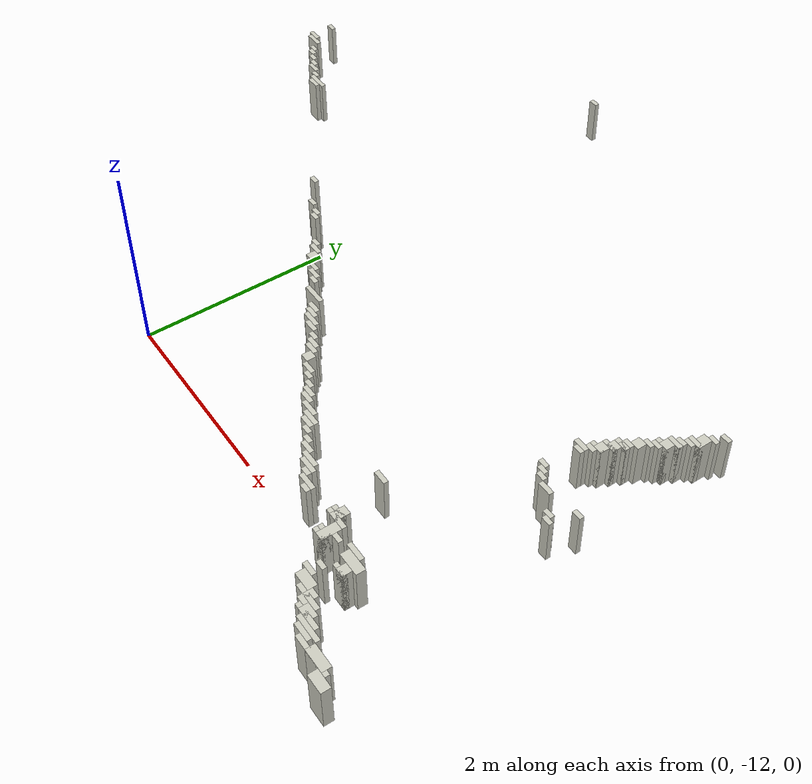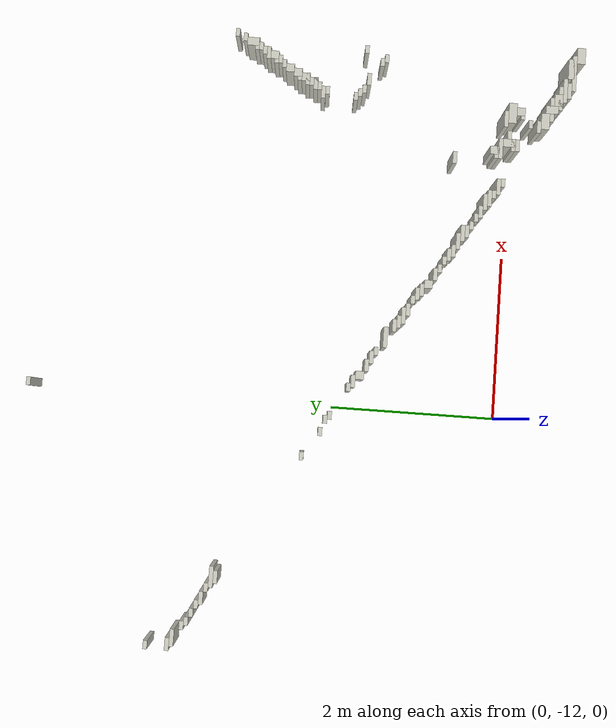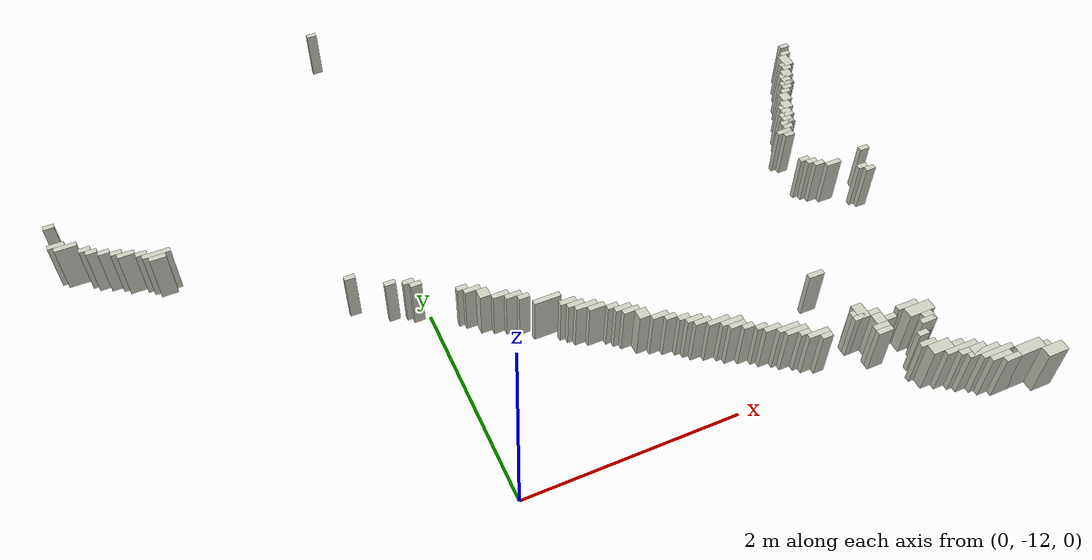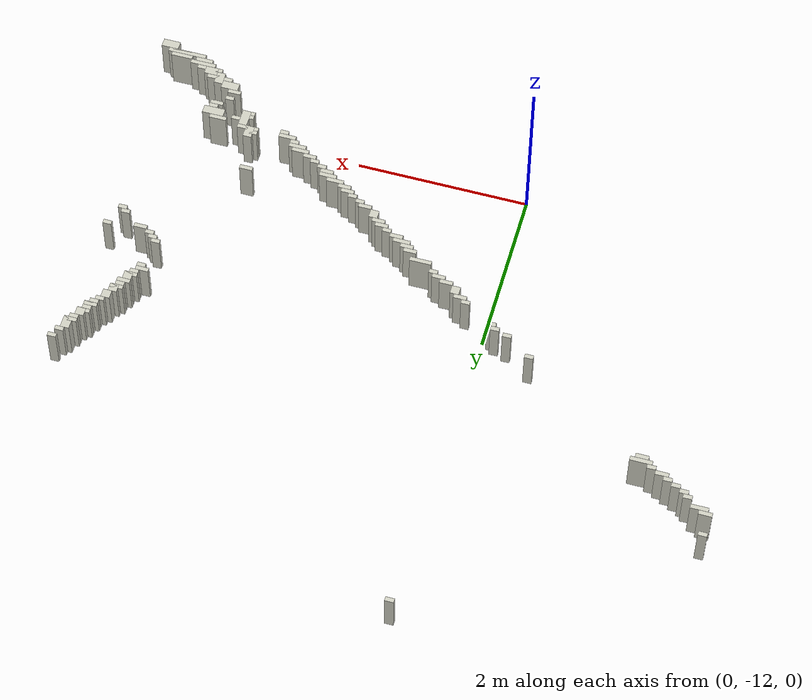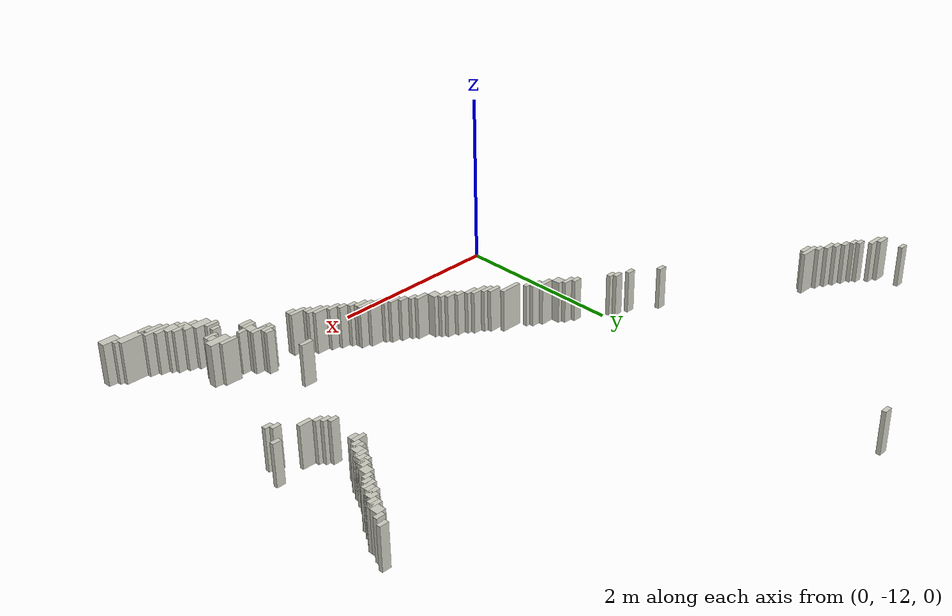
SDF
<sdf version="1.7">
 <world name="my_map_world">
  <model name="wall_426">
   <static>1</static>
   <pose>0.05 -6.375 0.25 0 -0 0</pose>
   <link name="link">
    <collision name="collision"><geometry><box><size>0.1 0.05 0.5</size></box></geometry></collision>
    <visual name="visual">
     <geometry><box><size>0.1 0.05 0.5</size></box></geometry>
     <material>
      <script><uri>file://media/materials/scripts/gazebo.material</uri><name>Gazebo/PaintedWall</name></script>
     </material>
    </visual>
   </link>
  </model>
  <model name="wall_484">
   <static>1</static>
   <pose>-2.9 -8.025 0.25 0 -0 0</pose>
   <link name="link">
    <collision name="collision"><geometry><box><size>0.1 0.05 0.5</size></box></geometry></collision>
    <visual name="visual">
     <geometry><box><size>0.1 0.05 0.5</size></box></geometry>
     <material>
      <script><uri>file://media/materials/scripts/gazebo.material</uri><name>Gazebo/PaintedWall</name></script>
     </material>
    </visual>
   </link>
  </model>
  <model name="wall_491">
   <static>1</static>
   <pose>-2.875 -8.275 0.25 0 -0 0</pose>
   <link name="link">
    <collision name="collision"><geometry><box><size>0.15 0.05 0.5</size></box></geometry></collision>
    <visual name="visual">
     <geometry><box><size>0.15 0.05 0.5</size></box></geometry>
     <material>
      <script><uri>file://media/materials/scripts/gazebo.material</uri><name>Gazebo/PaintedWall</name></script>
     </material>
    </visual>
   </link>
  </model>
  <model name="wall_493">
   <static>1</static>
   <pose>-2.8 -8.325 0.25 0 -0 0</pose>
   <link name="link">
    <collision name="collision"><geometry><box><size>0.2 0.05 0.5</size></box></geometry></collision>
    <visual name="visual">
     <geometry><box><size>0.2 0.05 0.5</size></box></geometry>
     <material>
      <script><uri>file://media/materials/scripts/gazebo.material</uri><name>Gazebo/PaintedWall</name></script>
     </material>
    </visual>
   </link>
  </model>
  <model name="wall_498">
   <static>1</static>
   <pose>-2.65 -8.425 0.25 0 -0 0</pose>
   <link name="link">
    <collision name="collision"><geometry><box><size>0.1 0.05 0.5</size></box></geometry></collision>
    <visual name="visual">
     <geometry><box><size>0.1 0.05 0.5</size></box></geometry>
     <material>
      <script><uri>file://media/materials/scripts/gazebo.material</uri><name>Gazebo/PaintedWall</name></script>
     </material>
    </visual>
   </link>
  </model>
  <model name="wall_502">
   <static>1</static>
   <pose>-2.6 -8.475 0.25 0 -0 0</pose>
   <link name="link">
    <collision name="collision"><geometry><box><size>0.1 0.05 0.5</size></box></geometry></collision>
    <visual name="visual">
     <geometry><box><size>0.1 0.05 0.5</size></box></geometry>
     <material>
      <script><uri>file://media/materials/scripts/gazebo.material</uri><name>Gazebo/PaintedWall</name></script>
     </material>
    </visual>
   </link>
  </model>
  <model name="wall_507">
   <static>1</static>
   <pose>-2.5 -8.525 0.25 0 -0 0</pose>
   <link name="link">
    <collision name="collision"><geometry><box><size>0.1 0.05 0.5</size></box></geometry></collision>
    <visual name="visual">
     <geometry><box><size>0.1 0.05 0.5</size></box></geometry>
     <material>
      <script><uri>file://media/materials/scripts/gazebo.material</uri><name>Gazebo/PaintedWall</name></script>
     </material>
    </visual>
   </link>
  </model>
  <model name="wall_508">
   <static>1</static>
   <pose>4.5 -8.525 0.25 0 -0 0</pose>
   <link name="link">
    <collision name="collision"><geometry><box><size>0.1 0.05 0.5</size></box></geometry></collision>
    <visual name="visual">
     <geometry><box><size>0.1 0.05 0.5</size></box></geometry>
     <material>
      <script><uri>file://media/materials/scripts/gazebo.material</uri><name>Gazebo/PaintedWall</name></script>
     </material>
    </visual>
   </link>
  </model>
  <model name="wall_510">
   <static>1</static>
   <pose>-2.4 -8.575 0.25 0 -0 0</pose>
   <link name="link">
    <collision name="collision"><geometry><box><size>0.1 0.05 0.5</size></box></geometry></collision>
    <visual name="visual">
     <geometry><box><size>0.1 0.05 0.5</size></box></geometry>
     <material>
      <script><uri>file://media/materials/scripts/gazebo.material</uri><name>Gazebo/PaintedWall</name></script>
     </material>
    </visual>
   </link>
  </model>
  <model name="wall_513">
   <static>1</static>
   <pose>-2.325 -8.625 0.25 0 -0 0</pose>
   <link name="link">
    <collision name="collision"><geometry><box><size>0.15 0.05 0.5</size></box></geometry></collision>
    <visual name="visual">
     <geometry><box><size>0.15 0.05 0.5</size></box></geometry>
     <material>
      <script><uri>file://media/materials/scripts/gazebo.material</uri><name>Gazebo/PaintedWall</name></script>
     </material>
    </visual>
   </link>
  </model>
  <model name="wall_514">
   <static>1</static>
   <pose>4.45 -8.625 0.25 0 -0 0</pose>
   <link name="link">
    <collision name="collision"><geometry><box><size>0.1 0.05 0.5</size></box></geometry></collision>
    <visual name="visual">
     <geometry><box><size>0.1 0.05 0.5</size></box></geometry>
     <material>
      <script><uri>file://media/materials/scripts/gazebo.material</uri><name>Gazebo/PaintedWall</name></script>
     </material>
    </visual>
   </link>
  </model>
  <model name="wall_518">
   <static>1</static>
   <pose>-2.2 -8.675 0.25 0 -0 0</pose>
   <link name="link">
    <collision name="collision"><geometry><box><size>0.1 0.05 0.5</size></box></geometry></collision>
    <visual name="visual">
     <geometry><box><size>0.1 0.05 0.5</size></box></geometry>
     <material>
      <script><uri>file://media/materials/scripts/gazebo.material</uri><name>Gazebo/PaintedWall</name></script>
     </material>
    </visual>
   </link>
  </model>
  <model name="wall_519">
   <static>1</static>
   <pose>4.4 -8.725 0.25 0 -0 0</pose>
   <link name="link">
    <collision name="collision"><geometry><box><size>0.1 0.15 0.5</size></box></geometry></collision>
    <visual name="visual">
     <geometry><box><size>0.1 0.15 0.5</size></box></geometry>
     <material>
      <script><uri>file://media/materials/scripts/gazebo.material</uri><name>Gazebo/PaintedWall</name></script>
     </material>
    </visual>
   </link>
  </model>
  <model name="wall_522">
   <static>1</static>
   <pose>-2.075 -8.725 0.25 0 -0 0</pose>
   <link name="link">
    <collision name="collision"><geometry><box><size>0.25 0.05 0.5</size></box></geometry></collision>
    <visual name="visual">
     <geometry><box><size>0.25 0.05 0.5</size></box></geometry>
     <material>
      <script><uri>file://media/materials/scripts/gazebo.material</uri><name>Gazebo/PaintedWall</name></script>
     </material>
    </visual>
   </link>
  </model>
  <model name="wall_526">
   <static>1</static>
   <pose>-2.075 -8.775 0.25 0 -0 0</pose>
   <link name="link">
    <collision name="collision"><geometry><box><size>0.15 0.05 0.5</size></box></geometry></collision>
    <visual name="visual">
     <geometry><box><size>0.15 0.05 0.5</size></box></geometry>
     <material>
      <script><uri>file://media/materials/scripts/gazebo.material</uri><name>Gazebo/PaintedWall</name></script>
     </material>
    </visual>
   </link>
  </model>
  <model name="wall_527">
   <static>1</static>
   <pose>4.375 -8.775 0.25 0 -0 0</pose>
   <link name="link">
    <collision name="collision"><geometry><box><size>0.15 0.05 0.5</size></box></geometry></collision>
    <visual name="visual">
     <geometry><box><size>0.15 0.05 0.5</size></box></geometry>
     <material>
      <script><uri>file://media/materials/scripts/gazebo.material</uri><name>Gazebo/PaintedWall</name></script>
     </material>
    </visual>
   </link>
  </model>
  <model name="wall_530">
   <static>1</static>
   <pose>4.35 -8.825 0.25 0 -0 0</pose>
   <link name="link">
    <collision name="collision"><geometry><box><size>0.1 0.05 0.5</size></box></geometry></collision>
    <visual name="visual">
     <geometry><box><size>0.1 0.05 0.5</size></box></geometry>
     <material>
      <script><uri>file://media/materials/scripts/gazebo.material</uri><name>Gazebo/PaintedWall</name></script>
     </material>
    </visual>
   </link>
  </model>
  <model name="wall_533">
   <static>1</static>
   <pose>4.3 -8.9 0.25 0 -0 0</pose>
   <link name="link">
    <collision name="collision"><geometry><box><size>0.1 0.1 0.5</size></box></geometry></collision>
    <visual name="visual">
     <geometry><box><size>0.1 0.1 0.5</size></box></geometry>
     <material>
      <script><uri>file://media/materials/scripts/gazebo.material</uri><name>Gazebo/PaintedWall</name></script>
     </material>
    </visual>
   </link>
  </model>
  <model name="wall_537">
   <static>1</static>
   <pose>4.275 -8.925 0.25 0 -0 0</pose>
   <link name="link">
    <collision name="collision"><geometry><box><size>0.15 0.05 0.5</size></box></geometry></collision>
    <visual name="visual">
     <geometry><box><size>0.15 0.05 0.5</size></box></geometry>
     <material>
      <script><uri>file://media/materials/scripts/gazebo.material</uri><name>Gazebo/PaintedWall</name></script>
     </material>
    </visual>
   </link>
  </model>
  <model name="wall_540">
   <static>1</static>
   <pose>4.25 -9 0.25 0 -0 0</pose>
   <link name="link">
    <collision name="collision"><geometry><box><size>0.1 0.1 0.5</size></box></geometry></collision>
    <visual name="visual">
     <geometry><box><size>0.1 0.1 0.5</size></box></geometry>
     <material>
      <script><uri>file://media/materials/scripts/gazebo.material</uri><name>Gazebo/PaintedWall</name></script>
     </material>
    </visual>
   </link>
  </model>
  <model name="wall_542">
   <static>1</static>
   <pose>4.225 -9.025 0.25 0 -0 0</pose>
   <link name="link">
    <collision name="collision"><geometry><box><size>0.15 0.05 0.5</size></box></geometry></collision>
    <visual name="visual">
     <geometry><box><size>0.15 0.05 0.5</size></box></geometry>
     <material>
      <script><uri>file://media/materials/scripts/gazebo.material</uri><name>Gazebo/PaintedWall</name></script>
     </material>
    </visual>
   </link>
  </model>
  <model name="wall_544">
   <static>1</static>
   <pose>4.2 -9.075 0.25 0 -0 0</pose>
   <link name="link">
    <collision name="collision"><geometry><box><size>0.1 0.05 0.5</size></box></geometry></collision>
    <visual name="visual">
     <geometry><box><size>0.1 0.05 0.5</size></box></geometry>
     <material>
      <script><uri>file://media/materials/scripts/gazebo.material</uri><name>Gazebo/PaintedWall</name></script>
     </material>
    </visual>
   </link>
  </model>
  <model name="wall_546">
   <static>1</static>
   <pose>4.15 -9.125 0.25 0 -0 0</pose>
   <link name="link">
    <collision name="collision"><geometry><box><size>0.1 0.05 0.5</size></box></geometry></collision>
    <visual name="visual">
     <geometry><box><size>0.1 0.05 0.5</size></box></geometry>
     <material>
      <script><uri>file://media/materials/scripts/gazebo.material</uri><name>Gazebo/PaintedWall</name></script>
     </material>
    </visual>
   </link>
  </model>
  <model name="wall_548">
   <static>1</static>
   <pose>4.1 -9.2 0.25 0 -0 0</pose>
   <link name="link">
    <collision name="collision"><geometry><box><size>0.1 0.1 0.5</size></box></geometry></collision>
    <visual name="visual">
     <geometry><box><size>0.1 0.1 0.5</size></box></geometry>
     <material>
      <script><uri>file://media/materials/scripts/gazebo.material</uri><name>Gazebo/PaintedWall</name></script>
     </material>
    </visual>
   </link>
  </model>
  <model name="wall_550">
   <static>1</static>
   <pose>4.05 -9.3 0.25 0 -0 0</pose>
   <link name="link">
    <collision name="collision"><geometry><box><size>0.1 0.1 0.5</size></box></geometry></collision>
    <visual name="visual">
     <geometry><box><size>0.1 0.1 0.5</size></box></geometry>
     <material>
      <script><uri>file://media/materials/scripts/gazebo.material</uri><name>Gazebo/PaintedWall</name></script>
     </material>
    </visual>
   </link>
  </model>
  <model name="wall_552">
   <static>1</static>
   <pose>4.025 -9.325 0.25 0 -0 0</pose>
   <link name="link">
    <collision name="collision"><geometry><box><size>0.15 0.05 0.5</size></box></geometry></collision>
    <visual name="visual">
     <geometry><box><size>0.15 0.05 0.5</size></box></geometry>
     <material>
      <script><uri>file://media/materials/scripts/gazebo.material</uri><name>Gazebo/PaintedWall</name></script>
     </material>
    </visual>
   </link>
  </model>
  <model name="wall_553">
   <static>1</static>
   <pose>4 -9.4 0.25 0 -0 0</pose>
   <link name="link">
    <collision name="collision"><geometry><box><size>0.1 0.1 0.5</size></box></geometry></collision>
    <visual name="visual">
     <geometry><box><size>0.1 0.1 0.5</size></box></geometry>
     <material>
      <script><uri>file://media/materials/scripts/gazebo.material</uri><name>Gazebo/PaintedWall</name></script>
     </material>
    </visual>
   </link>
  </model>
  <model name="wall_554">
   <static>1</static>
   <pose>3.975 -9.425 0.25 0 -0 0</pose>
   <link name="link">
    <collision name="collision"><geometry><box><size>0.15 0.05 0.5</size></box></geometry></collision>
    <visual name="visual">
     <geometry><box><size>0.15 0.05 0.5</size></box></geometry>
     <material>
      <script><uri>file://media/materials/scripts/gazebo.material</uri><name>Gazebo/PaintedWall</name></script>
     </material>
    </visual>
   </link>
  </model>
  <model name="wall_556">
   <static>1</static>
   <pose>3.95 -9.5 0.25 0 -0 0</pose>
   <link name="link">
    <collision name="collision"><geometry><box><size>0.1 0.1 0.5</size></box></geometry></collision>
    <visual name="visual">
     <geometry><box><size>0.1 0.1 0.5</size></box></geometry>
     <material>
      <script><uri>file://media/materials/scripts/gazebo.material</uri><name>Gazebo/PaintedWall</name></script>
     </material>
    </visual>
   </link>
  </model>
  <model name="wall_558">
   <static>1</static>
   <pose>3.925 -9.525 0.25 0 -0 0</pose>
   <link name="link">
    <collision name="collision"><geometry><box><size>0.15 0.05 0.5</size></box></geometry></collision>
    <visual name="visual">
     <geometry><box><size>0.15 0.05 0.5</size></box></geometry>
     <material>
      <script><uri>file://media/materials/scripts/gazebo.material</uri><name>Gazebo/PaintedWall</name></script>
     </material>
    </visual>
   </link>
  </model>
  <model name="wall_560">
   <static>1</static>
   <pose>3.9 -9.575 0.25 0 -0 0</pose>
   <link name="link">
    <collision name="collision"><geometry><box><size>0.1 0.05 0.5</size></box></geometry></collision>
    <visual name="visual">
     <geometry><box><size>0.1 0.05 0.5</size></box></geometry>
     <material>
      <script><uri>file://media/materials/scripts/gazebo.material</uri><name>Gazebo/PaintedWall</name></script>
     </material>
    </visual>
   </link>
  </model>
  <model name="wall_562">
   <static>1</static>
   <pose>3.825 -9.625 0.25 0 -0 0</pose>
   <link name="link">
    <collision name="collision"><geometry><box><size>0.15 0.05 0.5</size></box></geometry></collision>
    <visual name="visual">
     <geometry><box><size>0.15 0.05 0.5</size></box></geometry>
     <material>
      <script><uri>file://media/materials/scripts/gazebo.material</uri><name>Gazebo/PaintedWall</name></script>
     </material>
    </visual>
   </link>
  </model>
  <model name="wall_564">
   <static>1</static>
   <pose>-0.6 -9.675 0.25 0 -0 0</pose>
   <link name="link">
    <collision name="collision"><geometry><box><size>0.1 0.05 0.5</size></box></geometry></collision>
    <visual name="visual">
     <geometry><box><size>0.1 0.05 0.5</size></box></geometry>
     <material>
      <script><uri>file://media/materials/scripts/gazebo.material</uri><name>Gazebo/PaintedWall</name></script>
     </material>
    </visual>
   </link>
  </model>
  <model name="wall_565">
   <static>1</static>
   <pose>3.85 -9.675 0.25 0 -0 0</pose>
   <link name="link">
    <collision name="collision"><geometry><box><size>0.1 0.05 0.5</size></box></geometry></collision>
    <visual name="visual">
     <geometry><box><size>0.1 0.05 0.5</size></box></geometry>
     <material>
      <script><uri>file://media/materials/scripts/gazebo.material</uri><name>Gazebo/PaintedWall</name></script>
     </material>
    </visual>
   </link>
  </model>
  <model name="wall_570">
   <static>1</static>
   <pose>-0.3 -9.875 0.25 0 -0 0</pose>
   <link name="link">
    <collision name="collision"><geometry><box><size>0.1 0.05 0.5</size></box></geometry></collision>
    <visual name="visual">
     <geometry><box><size>0.1 0.05 0.5</size></box></geometry>
     <material>
      <script><uri>file://media/materials/scripts/gazebo.material</uri><name>Gazebo/PaintedWall</name></script>
     </material>
    </visual>
   </link>
  </model>
  <model name="wall_572">
   <static>1</static>
   <pose>-0.15 -9.925 0.25 0 -0 0</pose>
   <link name="link">
    <collision name="collision"><geometry><box><size>0.1 0.05 0.5</size></box></geometry></collision>
    <visual name="visual">
     <geometry><box><size>0.1 0.05 0.5</size></box></geometry>
     <material>
      <script><uri>file://media/materials/scripts/gazebo.material</uri><name>Gazebo/PaintedWall</name></script>
     </material>
    </visual>
   </link>
  </model>
  <model name="wall_574">
   <static>1</static>
   <pose>-0.1 -9.975 0.25 0 -0 0</pose>
   <link name="link">
    <collision name="collision"><geometry><box><size>0.1 0.05 0.5</size></box></geometry></collision>
    <visual name="visual">
     <geometry><box><size>0.1 0.05 0.5</size></box></geometry>
     <material>
      <script><uri>file://media/materials/scripts/gazebo.material</uri><name>Gazebo/PaintedWall</name></script>
     </material>
    </visual>
   </link>
  </model>
  <model name="wall_575">
   <static>1</static>
   <pose>3.8 -10.025 0.25 0 -0 0</pose>
   <link name="link">
    <collision name="collision"><geometry><box><size>0.1 0.05 0.5</size></box></geometry></collision>
    <visual name="visual">
     <geometry><box><size>0.1 0.05 0.5</size></box></geometry>
     <material>
      <script><uri>file://media/materials/scripts/gazebo.material</uri><name>Gazebo/PaintedWall</name></script>
     </material>
    </visual>
   </link>
  </model>
  <model name="wall_577">
   <static>1</static>
   <pose>3.85 -10.075 0.25 0 -0 0</pose>
   <link name="link">
    <collision name="collision"><geometry><box><size>0.1 0.05 0.5</size></box></geometry></collision>
    <visual name="visual">
     <geometry><box><size>0.1 0.05 0.5</size></box></geometry>
     <material>
      <script><uri>file://media/materials/scripts/gazebo.material</uri><name>Gazebo/PaintedWall</name></script>
     </material>
    </visual>
   </link>
  </model>
  <model name="wall_578">
   <static>1</static>
   <pose>3.9 -10.125 0.25 0 -0 0</pose>
   <link name="link">
    <collision name="collision"><geometry><box><size>0.1 0.05 0.5</size></box></geometry></collision>
    <visual name="visual">
     <geometry><box><size>0.1 0.05 0.5</size></box></geometry>
     <material>
      <script><uri>file://media/materials/scripts/gazebo.material</uri><name>Gazebo/PaintedWall</name></script>
     </material>
    </visual>
   </link>
  </model>
  <model name="wall_579">
   <static>1</static>
   <pose>4.4 -10.125 0.25 0 -0 0</pose>
   <link name="link">
    <collision name="collision"><geometry><box><size>0.1 0.05 0.5</size></box></geometry></collision>
    <visual name="visual">
     <geometry><box><size>0.1 0.05 0.5</size></box></geometry>
     <material>
      <script><uri>file://media/materials/scripts/gazebo.material</uri><name>Gazebo/PaintedWall</name></script>
     </material>
    </visual>
   </link>
  </model>
  <model name="wall_581">
   <static>1</static>
   <pose>0.25 -10.175 0.25 0 -0 0</pose>
   <link name="link">
    <collision name="collision"><geometry><box><size>0.1 0.05 0.5</size></box></geometry></collision>
    <visual name="visual">
     <geometry><box><size>0.1 0.05 0.5</size></box></geometry>
     <material>
      <script><uri>file://media/materials/scripts/gazebo.material</uri><name>Gazebo/PaintedWall</name></script>
     </material>
    </visual>
   </link>
  </model>
  <model name="wall_582">
   <static>1</static>
   <pose>4.025 -10.175 0.25 0 -0 0</pose>
   <link name="link">
    <collision name="collision"><geometry><box><size>0.15 0.05 0.5</size></box></geometry></collision>
    <visual name="visual">
     <geometry><box><size>0.15 0.05 0.5</size></box></geometry>
     <material>
      <script><uri>file://media/materials/scripts/gazebo.material</uri><name>Gazebo/PaintedWall</name></script>
     </material>
    </visual>
   </link>
  </model>
  <model name="wall_584">
   <static>1</static>
   <pose>0.325 -10.225 0.25 0 -0 0</pose>
   <link name="link">
    <collision name="collision"><geometry><box><size>0.15 0.05 0.5</size></box></geometry></collision>
    <visual name="visual">
     <geometry><box><size>0.15 0.05 0.5</size></box></geometry>
     <material>
      <script><uri>file://media/materials/scripts/gazebo.material</uri><name>Gazebo/PaintedWall</name></script>
     </material>
    </visual>
   </link>
  </model>
  <model name="wall_586">
   <static>1</static>
   <pose>0.4 -10.3 0.25 0 -0 0</pose>
   <link name="link">
    <collision name="collision"><geometry><box><size>0.1 0.1 0.5</size></box></geometry></collision>
    <visual name="visual">
     <geometry><box><size>0.1 0.1 0.5</size></box></geometry>
     <material>
      <script><uri>file://media/materials/scripts/gazebo.material</uri><name>Gazebo/PaintedWall</name></script>
     </material>
    </visual>
   </link>
  </model>
  <model name="wall_588">
   <static>1</static>
   <pose>4.25 -10.325 0.25 0 -0 0</pose>
   <link name="link">
    <collision name="collision"><geometry><box><size>0.1 0.05 0.5</size></box></geometry></collision>
    <visual name="visual">
     <geometry><box><size>0.1 0.05 0.5</size></box></geometry>
     <material>
      <script><uri>file://media/materials/scripts/gazebo.material</uri><name>Gazebo/PaintedWall</name></script>
     </material>
    </visual>
   </link>
  </model>
  <model name="wall_590">
   <static>1</static>
   <pose>0.525 -10.375 0.25 0 -0 0</pose>
   <link name="link">
    <collision name="collision"><geometry><box><size>0.15 0.05 0.5</size></box></geometry></collision>
    <visual name="visual">
     <geometry><box><size>0.15 0.05 0.5</size></box></geometry>
     <material>
      <script><uri>file://media/materials/scripts/gazebo.material</uri><name>Gazebo/PaintedWall</name></script>
     </material>
    </visual>
   </link>
  </model>
  <model name="wall_591">
   <static>1</static>
   <pose>4.3 -10.375 0.25 0 -0 0</pose>
   <link name="link">
    <collision name="collision"><geometry><box><size>0.1 0.05 0.5</size></box></geometry></collision>
    <visual name="visual">
     <geometry><box><size>0.1 0.05 0.5</size></box></geometry>
     <material>
      <script><uri>file://media/materials/scripts/gazebo.material</uri><name>Gazebo/PaintedWall</name></script>
     </material>
    </visual>
   </link>
  </model>
  <model name="wall_593">
   <static>1</static>
   <pose>0.625 -10.425 0.25 0 -0 0</pose>
   <link name="link">
    <collision name="collision"><geometry><box><size>0.15 0.05 0.5</size></box></geometry></collision>
    <visual name="visual">
     <geometry><box><size>0.15 0.05 0.5</size></box></geometry>
     <material>
      <script><uri>file://media/materials/scripts/gazebo.material</uri><name>Gazebo/PaintedWall</name></script>
     </material>
    </visual>
   </link>
  </model>
  <model name="wall_595">
   <static>1</static>
   <pose>0.7 -10.475 0.25 0 -0 0</pose>
   <link name="link">
    <collision name="collision"><geometry><box><size>0.1 0.05 0.5</size></box></geometry></collision>
    <visual name="visual">
     <geometry><box><size>0.1 0.05 0.5</size></box></geometry>
     <material>
      <script><uri>file://media/materials/scripts/gazebo.material</uri><name>Gazebo/PaintedWall</name></script>
     </material>
    </visual>
   </link>
  </model>
  <model name="wall_598">
   <static>1</static>
   <pose>0.875 -10.575 0.25 0 -0 0</pose>
   <link name="link">
    <collision name="collision"><geometry><box><size>0.25 0.05 0.5</size></box></geometry></collision>
    <visual name="visual">
     <geometry><box><size>0.25 0.05 0.5</size></box></geometry>
     <material>
      <script><uri>file://media/materials/scripts/gazebo.material</uri><name>Gazebo/PaintedWall</name></script>
     </material>
    </visual>
   </link>
  </model>
  <model name="wall_601">
   <static>1</static>
   <pose>1.025 -10.675 0.25 0 -0 0</pose>
   <link name="link">
    <collision name="collision"><geometry><box><size>0.15 0.05 0.5</size></box></geometry></collision>
    <visual name="visual">
     <geometry><box><size>0.15 0.05 0.5</size></box></geometry>
     <material>
      <script><uri>file://media/materials/scripts/gazebo.material</uri><name>Gazebo/PaintedWall</name></script>
     </material>
    </visual>
   </link>
  </model>
  <model name="wall_603">
   <static>1</static>
   <pose>1.075 -10.725 0.25 0 -0 0</pose>
   <link name="link">
    <collision name="collision"><geometry><box><size>0.15 0.05 0.5</size></box></geometry></collision>
    <visual name="visual">
     <geometry><box><size>0.15 0.05 0.5</size></box></geometry>
     <material>
      <script><uri>file://media/materials/scripts/gazebo.material</uri><name>Gazebo/PaintedWall</name></script>
     </material>
    </visual>
   </link>
  </model>
  <model name="wall_605">
   <static>1</static>
   <pose>1.15 -10.775 0.25 0 -0 0</pose>
   <link name="link">
    <collision name="collision"><geometry><box><size>0.2 0.05 0.5</size></box></geometry></collision>
    <visual name="visual">
     <geometry><box><size>0.2 0.05 0.5</size></box></geometry>
     <material>
      <script><uri>file://media/materials/scripts/gazebo.material</uri><name>Gazebo/PaintedWall</name></script>
     </material>
    </visual>
   </link>
  </model>
  <model name="wall_607">
   <static>1</static>
   <pose>1.225 -10.825 0.25 0 -0 0</pose>
   <link name="link">
    <collision name="collision"><geometry><box><size>0.15 0.05 0.5</size></box></geometry></collision>
    <visual name="visual">
     <geometry><box><size>0.15 0.05 0.5</size></box></geometry>
     <material>
      <script><uri>file://media/materials/scripts/gazebo.material</uri><name>Gazebo/PaintedWall</name></script>
     </material>
    </visual>
   </link>
  </model>
  <model name="wall_609">
   <static>1</static>
   <pose>1.35 -10.875 0.25 0 -0 0</pose>
   <link name="link">
    <collision name="collision"><geometry><box><size>0.1 0.05 0.5</size></box></geometry></collision>
    <visual name="visual">
     <geometry><box><size>0.1 0.05 0.5</size></box></geometry>
     <material>
      <script><uri>file://media/materials/scripts/gazebo.material</uri><name>Gazebo/PaintedWall</name></script>
     </material>
    </visual>
   </link>
  </model>
  <model name="wall_611">
   <static>1</static>
   <pose>1.425 -10.925 0.25 0 -0 0</pose>
   <link name="link">
    <collision name="collision"><geometry><box><size>0.15 0.05 0.5</size></box></geometry></collision>
    <visual name="visual">
     <geometry><box><size>0.15 0.05 0.5</size></box></geometry>
     <material>
      <script><uri>file://media/materials/scripts/gazebo.material</uri><name>Gazebo/PaintedWall</name></script>
     </material>
    </visual>
   </link>
  </model>
  <model name="wall_613">
   <static>1</static>
   <pose>1.475 -10.975 0.25 0 -0 0</pose>
   <link name="link">
    <collision name="collision"><geometry><box><size>0.15 0.05 0.5</size></box></geometry></collision>
    <visual name="visual">
     <geometry><box><size>0.15 0.05 0.5</size></box></geometry>
     <material>
      <script><uri>file://media/materials/scripts/gazebo.material</uri><name>Gazebo/PaintedWall</name></script>
     </material>
    </visual>
   </link>
  </model>
  <model name="wall_615">
   <static>1</static>
   <pose>1.55 -11.05 0.25 0 -0 0</pose>
   <link name="link">
    <collision name="collision"><geometry><box><size>0.1 0.1 0.5</size></box></geometry></collision>
    <visual name="visual">
     <geometry><box><size>0.1 0.1 0.5</size></box></geometry>
     <material>
      <script><uri>file://media/materials/scripts/gazebo.material</uri><name>Gazebo/PaintedWall</name></script>
     </material>
    </visual>
   </link>
  </model>
  <model name="wall_618">
   <static>1</static>
   <pose>1.675 -11.125 0.25 0 -0 0</pose>
   <link name="link">
    <collision name="collision"><geometry><box><size>0.15 0.05 0.5</size></box></geometry></collision>
    <visual name="visual">
     <geometry><box><size>0.15 0.05 0.5</size></box></geometry>
     <material>
      <script><uri>file://media/materials/scripts/gazebo.material</uri><name>Gazebo/PaintedWall</name></script>
     </material>
    </visual>
   </link>
  </model>
  <model name="wall_620">
   <static>1</static>
   <pose>1.75 -11.175 0.25 0 -0 0</pose>
   <link name="link">
    <collision name="collision"><geometry><box><size>0.1 0.05 0.5</size></box></geometry></collision>
    <visual name="visual">
     <geometry><box><size>0.1 0.05 0.5</size></box></geometry>
     <material>
      <script><uri>file://media/materials/scripts/gazebo.material</uri><name>Gazebo/PaintedWall</name></script>
     </material>
    </visual>
   </link>
  </model>
  <model name="wall_622">
   <static>1</static>
   <pose>1.85 -11.225 0.25 0 -0 0</pose>
   <link name="link">
    <collision name="collision"><geometry><box><size>0.1 0.05 0.5</size></box></geometry></collision>
    <visual name="visual">
     <geometry><box><size>0.1 0.05 0.5</size></box></geometry>
     <material>
      <script><uri>file://media/materials/scripts/gazebo.material</uri><name>Gazebo/PaintedWall</name></script>
     </material>
    </visual>
   </link>
  </model>
  <model name="wall_624">
   <static>1</static>
   <pose>1.925 -11.275 0.25 0 -0 0</pose>
   <link name="link">
    <collision name="collision"><geometry><box><size>0.15 0.05 0.5</size></box></geometry></collision>
    <visual name="visual">
     <geometry><box><size>0.15 0.05 0.5</size></box></geometry>
     <material>
      <script><uri>file://media/materials/scripts/gazebo.material</uri><name>Gazebo/PaintedWall</name></script>
     </material>
    </visual>
   </link>
  </model>
  <model name="wall_625">
   <static>1</static>
   <pose>3.125 -11.275 0.25 0 -0 0</pose>
   <link name="link">
    <collision name="collision"><geometry><box><size>0.15 0.05 0.5</size></box></geometry></collision>
    <visual name="visual">
     <geometry><box><size>0.15 0.05 0.5</size></box></geometry>
     <material>
      <script><uri>file://media/materials/scripts/gazebo.material</uri><name>Gazebo/PaintedWall</name></script>
     </material>
    </visual>
   </link>
  </model>
  <model name="wall_627">
   <static>1</static>
   <pose>1.975 -11.325 0.25 0 -0 0</pose>
   <link name="link">
    <collision name="collision"><geometry><box><size>0.15 0.05 0.5</size></box></geometry></collision>
    <visual name="visual">
     <geometry><box><size>0.15 0.05 0.5</size></box></geometry>
     <material>
      <script><uri>file://media/materials/scripts/gazebo.material</uri><name>Gazebo/PaintedWall</name></script>
     </material>
    </visual>
   </link>
  </model>
  <model name="wall_629">
   <static>1</static>
   <pose>2.1 -11.375 0.25 0 -0 0</pose>
   <link name="link">
    <collision name="collision"><geometry><box><size>0.2 0.05 0.5</size></box></geometry></collision>
    <visual name="visual">
     <geometry><box><size>0.2 0.05 0.5</size></box></geometry>
     <material>
      <script><uri>file://media/materials/scripts/gazebo.material</uri><name>Gazebo/PaintedWall</name></script>
     </material>
    </visual>
   </link>
  </model>
  <model name="wall_631">
   <static>1</static>
   <pose>2.2 -11.425 0.25 0 -0 0</pose>
   <link name="link">
    <collision name="collision"><geometry><box><size>0.2 0.05 0.5</size></box></geometry></collision>
    <visual name="visual">
     <geometry><box><size>0.2 0.05 0.5</size></box></geometry>
     <material>
      <script><uri>file://media/materials/scripts/gazebo.material</uri><name>Gazebo/PaintedWall</name></script>
     </material>
    </visual>
   </link>
  </model>
  <model name="wall_633">
   <static>1</static>
   <pose>2.225 -11.475 0.25 0 -0 0</pose>
   <link name="link">
    <collision name="collision"><geometry><box><size>0.15 0.05 0.5</size></box></geometry></collision>
    <visual name="visual">
     <geometry><box><size>0.15 0.05 0.5</size></box></geometry>
     <material>
      <script><uri>file://media/materials/scripts/gazebo.material</uri><name>Gazebo/PaintedWall</name></script>
     </material>
    </visual>
   </link>
  </model>
  <model name="wall_635">
   <static>1</static>
   <pose>2.3 -11.525 0.25 0 -0 0</pose>
   <link name="link">
    <collision name="collision"><geometry><box><size>0.1 0.05 0.5</size></box></geometry></collision>
    <visual name="visual">
     <geometry><box><size>0.1 0.05 0.5</size></box></geometry>
     <material>
      <script><uri>file://media/materials/scripts/gazebo.material</uri><name>Gazebo/PaintedWall</name></script>
     </material>
    </visual>
   </link>
  </model>
  <model name="wall_637">
   <static>1</static>
   <pose>2.4 -11.575 0.25 0 -0 0</pose>
   <link name="link">
    <collision name="collision"><geometry><box><size>0.1 0.05 0.5</size></box></geometry></collision>
    <visual name="visual">
     <geometry><box><size>0.1 0.05 0.5</size></box></geometry>
     <material>
      <script><uri>file://media/materials/scripts/gazebo.material</uri><name>Gazebo/PaintedWall</name></script>
     </material>
    </visual>
   </link>
  </model>
  <model name="wall_638">
   <static>1</static>
   <pose>2.475 -11.625 0.25 0 -0 0</pose>
   <link name="link">
    <collision name="collision"><geometry><box><size>0.15 0.05 0.5</size></box></geometry></collision>
    <visual name="visual">
     <geometry><box><size>0.15 0.05 0.5</size></box></geometry>
     <material>
      <script><uri>file://media/materials/scripts/gazebo.material</uri><name>Gazebo/PaintedWall</name></script>
     </material>
    </visual>
   </link>
  </model>
  <model name="wall_640">
   <static>1</static>
   <pose>2.6 -11.675 0.25 0 -0 0</pose>
   <link name="link">
    <collision name="collision"><geometry><box><size>0.2 0.05 0.5</size></box></geometry></collision>
    <visual name="visual">
     <geometry><box><size>0.2 0.05 0.5</size></box></geometry>
     <material>
      <script><uri>file://media/materials/scripts/gazebo.material</uri><name>Gazebo/PaintedWall</name></script>
     </material>
    </visual>
   </link>
  </model>
  <model name="wall_642">
   <static>1</static>
   <pose>2.65 -11.725 0.25 0 -0 0</pose>
   <link name="link">
    <collision name="collision"><geometry><box><size>0.2 0.05 0.5</size></box></geometry></collision>
    <visual name="visual">
     <geometry><box><size>0.2 0.05 0.5</size></box></geometry>
     <material>
      <script><uri>file://media/materials/scripts/gazebo.material</uri><name>Gazebo/PaintedWall</name></script>
     </material>
    </visual>
   </link>
  </model>
  <model name="wall_643">
   <static>1</static>
   <pose>3.25 -11.775 0.25 0 -0 0</pose>
   <link name="link">
    <collision name="collision"><geometry><box><size>0.1 0.15 0.5</size></box></geometry></collision>
    <visual name="visual">
     <geometry><box><size>0.1 0.15 0.5</size></box></geometry>
     <material>
      <script><uri>file://media/materials/scripts/gazebo.material</uri><name>Gazebo/PaintedWall</name></script>
     </material>
    </visual>
   </link>
  </model>
  <model name="wall_645">
   <static>1</static>
   <pose>2.7 -11.775 0.25 0 -0 0</pose>
   <link name="link">
    <collision name="collision"><geometry><box><size>0.1 0.05 0.5</size></box></geometry></collision>
    <visual name="visual">
     <geometry><box><size>0.1 0.05 0.5</size></box></geometry>
     <material>
      <script><uri>file://media/materials/scripts/gazebo.material</uri><name>Gazebo/PaintedWall</name></script>
     </material>
    </visual>
   </link>
  </model>
  <model name="wall_646">
   <static>1</static>
   <pose>3.225 -11.775 0.25 0 -0 0</pose>
   <link name="link">
    <collision name="collision"><geometry><box><size>0.15 0.05 0.5</size></box></geometry></collision>
    <visual name="visual">
     <geometry><box><size>0.15 0.05 0.5</size></box></geometry>
     <material>
      <script><uri>file://media/materials/scripts/gazebo.material</uri><name>Gazebo/PaintedWall</name></script>
     </material>
    </visual>
   </link>
  </model>
  <model name="wall_648">
   <static>1</static>
   <pose>2.8 -11.825 0.25 0 -0 0</pose>
   <link name="link">
    <collision name="collision"><geometry><box><size>0.2 0.05 0.5</size></box></geometry></collision>
    <visual name="visual">
     <geometry><box><size>0.2 0.05 0.5</size></box></geometry>
     <material>
      <script><uri>file://media/materials/scripts/gazebo.material</uri><name>Gazebo/PaintedWall</name></script>
     </material>
    </visual>
   </link>
  </model>
  <model name="wall_649">
   <static>1</static>
   <pose>3.275 -11.825 0.25 0 -0 0</pose>
   <link name="link">
    <collision name="collision"><geometry><box><size>0.25 0.05 0.5</size></box></geometry></collision>
    <visual name="visual">
     <geometry><box><size>0.25 0.05 0.5</size></box></geometry>
     <material>
      <script><uri>file://media/materials/scripts/gazebo.material</uri><name>Gazebo/PaintedWall</name></script>
     </material>
    </visual>
   </link>
  </model>
  <model name="wall_650">
   <static>1</static>
   <pose>2.85 -11.875 0.25 0 -0 0</pose>
   <link name="link">
    <collision name="collision"><geometry><box><size>0.1 0.05 0.5</size></box></geometry></collision>
    <visual name="visual">
     <geometry><box><size>0.1 0.05 0.5</size></box></geometry>
     <material>
      <script><uri>file://media/materials/scripts/gazebo.material</uri><name>Gazebo/PaintedWall</name></script>
     </material>
    </visual>
   </link>
  </model>
  <model name="wall_651">
   <static>1</static>
   <pose>3.35 -11.95 0.25 0 -0 0</pose>
   <link name="link">
    <collision name="collision"><geometry><box><size>0.1 0.2 0.5</size></box></geometry></collision>
    <visual name="visual">
     <geometry><box><size>0.1 0.2 0.5</size></box></geometry>
     <material>
      <script><uri>file://media/materials/scripts/gazebo.material</uri><name>Gazebo/PaintedWall</name></script>
     </material>
    </visual>
   </link>
  </model>
  <model name="wall_652">
   <static>1</static>
   <pose>3.65 -11.875 0.25 0 -0 0</pose>
   <link name="link">
    <collision name="collision"><geometry><box><size>0.2 0.05 0.5</size></box></geometry></collision>
    <visual name="visual">
     <geometry><box><size>0.2 0.05 0.5</size></box></geometry>
     <material>
      <script><uri>file://media/materials/scripts/gazebo.material</uri><name>Gazebo/PaintedWall</name></script>
     </material>
    </visual>
   </link>
  </model>
  <model name="wall_654">
   <static>1</static>
   <pose>3.45 -11.925 0.25 0 -0 0</pose>
   <link name="link">
    <collision name="collision"><geometry><box><size>0.1 0.05 0.5</size></box></geometry></collision>
    <visual name="visual">
     <geometry><box><size>0.1 0.05 0.5</size></box></geometry>
     <material>
      <script><uri>file://media/materials/scripts/gazebo.material</uri><name>Gazebo/PaintedWall</name></script>
     </material>
    </visual>
   </link>
  </model>
  <model name="wall_655">
   <static>1</static>
   <pose>3.725 -11.95 0.25 0 -0 0</pose>
   <link name="link">
    <collision name="collision"><geometry><box><size>0.25 0.1 0.5</size></box></geometry></collision>
    <visual name="visual">
     <geometry><box><size>0.25 0.1 0.5</size></box></geometry>
     <material>
      <script><uri>file://media/materials/scripts/gazebo.material</uri><name>Gazebo/PaintedWall</name></script>
     </material>
    </visual>
   </link>
  </model>
  <model name="wall_657">
   <static>1</static>
   <pose>3.325 -11.975 0.25 0 -0 0</pose>
   <link name="link">
    <collision name="collision"><geometry><box><size>0.15 0.05 0.5</size></box></geometry></collision>
    <visual name="visual">
     <geometry><box><size>0.15 0.05 0.5</size></box></geometry>
     <material>
      <script><uri>file://media/materials/scripts/gazebo.material</uri><name>Gazebo/PaintedWall</name></script>
     </material>
    </visual>
   </link>
  </model>
  <model name="wall_658">
   <static>1</static>
   <pose>3.325 -12.025 0.25 0 -0 0</pose>
   <link name="link">
    <collision name="collision"><geometry><box><size>0.15 0.05 0.5</size></box></geometry></collision>
    <visual name="visual">
     <geometry><box><size>0.15 0.05 0.5</size></box></geometry>
     <material>
      <script><uri>file://media/materials/scripts/gazebo.material</uri><name>Gazebo/PaintedWall</name></script>
     </material>
    </visual>
   </link>
  </model>
  <model name="wall_659">
   <static>1</static>
   <pose>3.75 -12.05 0.25 0 -0 0</pose>
   <link name="link">
    <collision name="collision"><geometry><box><size>0.1 0.1 0.5</size></box></geometry></collision>
    <visual name="visual">
     <geometry><box><size>0.1 0.1 0.5</size></box></geometry>
     <material>
      <script><uri>file://media/materials/scripts/gazebo.material</uri><name>Gazebo/PaintedWall</name></script>
     </material>
    </visual>
   </link>
  </model>
  <model name="wall_661">
   <static>1</static>
   <pose>3.725 -12.075 0.25 0 -0 0</pose>
   <link name="link">
    <collision name="collision"><geometry><box><size>0.15 0.05 0.5</size></box></geometry></collision>
    <visual name="visual">
     <geometry><box><size>0.15 0.05 0.5</size></box></geometry>
     <material>
      <script><uri>file://media/materials/scripts/gazebo.material</uri><name>Gazebo/PaintedWall</name></script>
     </material>
    </visual>
   </link>
  </model>
  <model name="wall_664">
   <static>1</static>
   <pose>3.6 -12.175 0.25 0 -0 0</pose>
   <link name="link">
    <collision name="collision"><geometry><box><size>0.1 0.05 0.5</size></box></geometry></collision>
    <visual name="visual">
     <geometry><box><size>0.1 0.05 0.5</size></box></geometry>
     <material>
      <script><uri>file://media/materials/scripts/gazebo.material</uri><name>Gazebo/PaintedWall</name></script>
     </material>
    </visual>
   </link>
  </model>
  <model name="wall_667">
   <static>1</static>
   <pose>3.575 -12.275 0.25 0 -0 0</pose>
   <link name="link">
    <collision name="collision"><geometry><box><size>0.15 0.05 0.5</size></box></geometry></collision>
    <visual name="visual">
     <geometry><box><size>0.15 0.05 0.5</size></box></geometry>
     <material>
      <script><uri>file://media/materials/scripts/gazebo.material</uri><name>Gazebo/PaintedWall</name></script>
     </material>
    </visual>
   </link>
  </model>
  <model name="wall_669">
   <static>1</static>
   <pose>3.65 -12.35 0.25 0 -0 0</pose>
   <link name="link">
    <collision name="collision"><geometry><box><size>0.2 0.1 0.5</size></box></geometry></collision>
    <visual name="visual">
     <geometry><box><size>0.2 0.1 0.5</size></box></geometry>
     <material>
      <script><uri>file://media/materials/scripts/gazebo.material</uri><name>Gazebo/PaintedWall</name></script>
     </material>
    </visual>
   </link>
  </model>
  <model name="wall_670">
   <static>1</static>
   <pose>3.8 -12.425 0.25 0 -0 0</pose>
   <link name="link">
    <collision name="collision"><geometry><box><size>0.1 0.15 0.5</size></box></geometry></collision>
    <visual name="visual">
     <geometry><box><size>0.1 0.15 0.5</size></box></geometry>
     <material>
      <script><uri>file://media/materials/scripts/gazebo.material</uri><name>Gazebo/PaintedWall</name></script>
     </material>
    </visual>
   </link>
  </model>
  <model name="wall_672">
   <static>1</static>
   <pose>3.8 -12.425 0.25 0 -0 0</pose>
   <link name="link">
    <collision name="collision"><geometry><box><size>0.3 0.05 0.5</size></box></geometry></collision>
    <visual name="visual">
     <geometry><box><size>0.3 0.05 0.5</size></box></geometry>
     <material>
      <script><uri>file://media/materials/scripts/gazebo.material</uri><name>Gazebo/PaintedWall</name></script>
     </material>
    </visual>
   </link>
  </model>
  <model name="wall_673">
   <static>1</static>
   <pose>3.925 -12.5 0.25 0 -0 0</pose>
   <link name="link">
    <collision name="collision"><geometry><box><size>0.15 0.1 0.5</size></box></geometry></collision>
    <visual name="visual">
     <geometry><box><size>0.15 0.1 0.5</size></box></geometry>
     <material>
      <script><uri>file://media/materials/scripts/gazebo.material</uri><name>Gazebo/PaintedWall</name></script>
     </material>
    </visual>
   </link>
  </model>
  <model name="wall_675">
   <static>1</static>
   <pose>3.95 -12.525 0.25 0 -0 0</pose>
   <link name="link">
    <collision name="collision"><geometry><box><size>0.3 0.05 0.5</size></box></geometry></collision>
    <visual name="visual">
     <geometry><box><size>0.3 0.05 0.5</size></box></geometry>
     <material>
      <script><uri>file://media/materials/scripts/gazebo.material</uri><name>Gazebo/PaintedWall</name></script>
     </material>
    </visual>
   </link>
  </model>
  <model name="wall_677">
   <static>1</static>
   <pose>4.05 -12.575 0.25 0 -0 0</pose>
   <link name="link">
    <collision name="collision"><geometry><box><size>0.3 0.05 0.5</size></box></geometry></collision>
    <visual name="visual">
     <geometry><box><size>0.3 0.05 0.5</size></box></geometry>
     <material>
      <script><uri>file://media/materials/scripts/gazebo.material</uri><name>Gazebo/PaintedWall</name></script>
     </material>
    </visual>
   </link>
  </model>
  <model name="wall_679">
   <static>1</static>
   <pose>4.05 -12.625 0.25 0 -0 0</pose>
   <link name="link">
    <collision name="collision"><geometry><box><size>0.2 0.05 0.5</size></box></geometry></collision>
    <visual name="visual">
     <geometry><box><size>0.2 0.05 0.5</size></box></geometry>
     <material>
      <script><uri>file://media/materials/scripts/gazebo.material</uri><name>Gazebo/PaintedWall</name></script>
     </material>
    </visual>
   </link>
  </model>
  <model name="wall_680">
   <static>1</static>
   <pose>4.325 -12.65 0.25 0 -0 0</pose>
   <link name="link">
    <collision name="collision"><geometry><box><size>0.25 0.1 0.5</size></box></geometry></collision>
    <visual name="visual">
     <geometry><box><size>0.25 0.1 0.5</size></box></geometry>
     <material>
      <script><uri>file://media/materials/scripts/gazebo.material</uri><name>Gazebo/PaintedWall</name></script>
     </material>
    </visual>
   </link>
  </model>
  <model name="wall_682">
   <static>1</static>
   <pose>4.275 -12.675 0.25 0 -0 0</pose>
   <link name="link">
    <collision name="collision"><geometry><box><size>0.45 0.05 0.5</size></box></geometry></collision>
    <visual name="visual">
     <geometry><box><size>0.45 0.05 0.5</size></box></geometry>
     <material>
      <script><uri>file://media/materials/scripts/gazebo.material</uri><name>Gazebo/PaintedWall</name></script>
     </material>
    </visual>
   </link>
  </model>
  <model name="wall_684">
   <static>1</static>
   <pose>4.5 -12.75 0.25 0 -0 0</pose>
   <link name="link">
    <collision name="collision"><geometry><box><size>0.2 0.1 0.5</size></box></geometry></collision>
    <visual name="visual">
     <geometry><box><size>0.2 0.1 0.5</size></box></geometry>
     <material>
      <script><uri>file://media/materials/scripts/gazebo.material</uri><name>Gazebo/PaintedWall</name></script>
     </material>
    </visual>
   </link>
  </model>
 </world>
</sdf>
